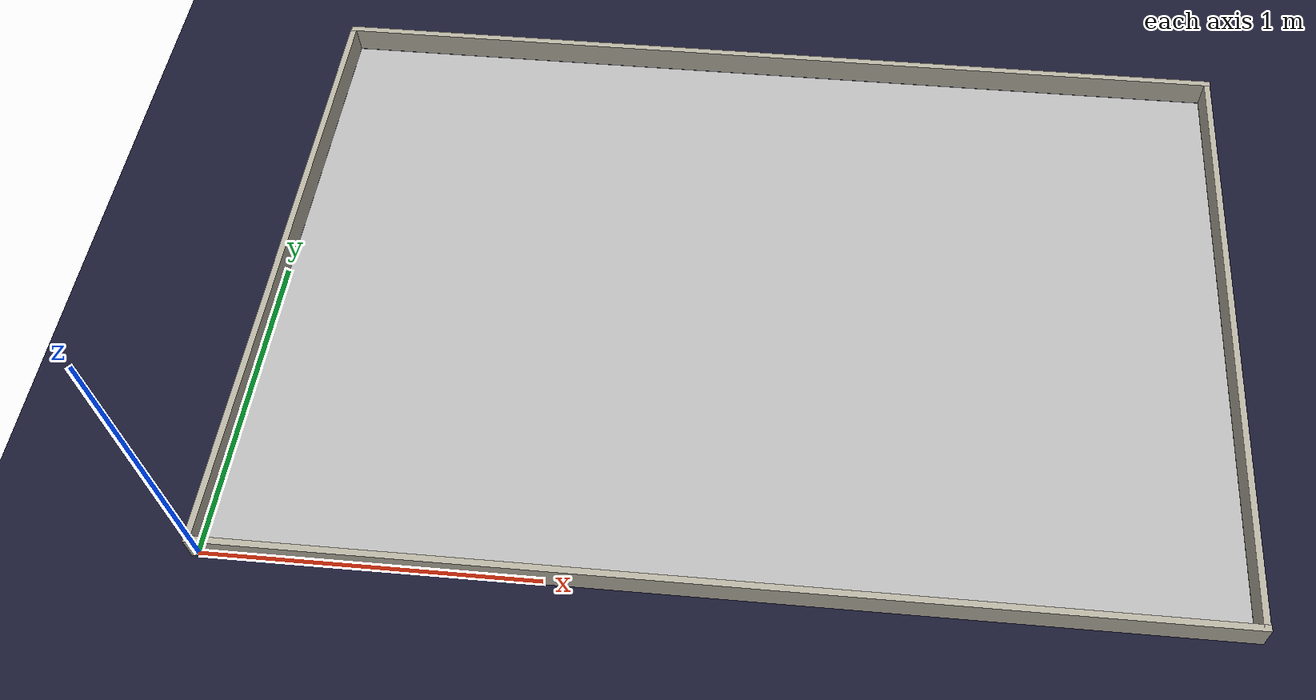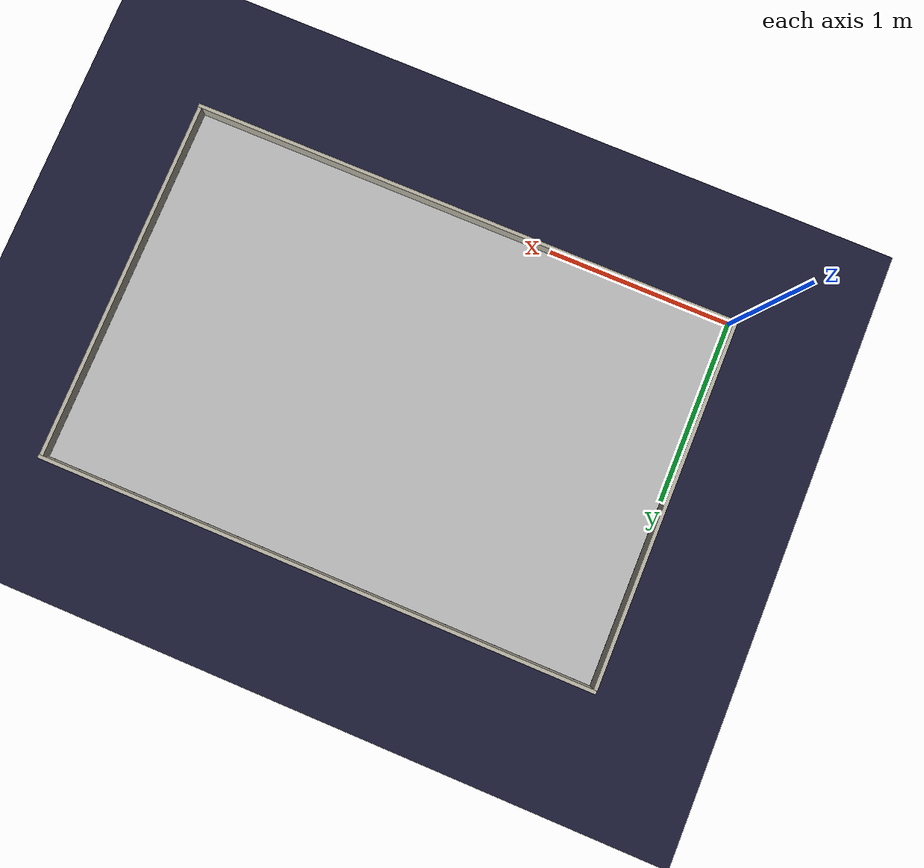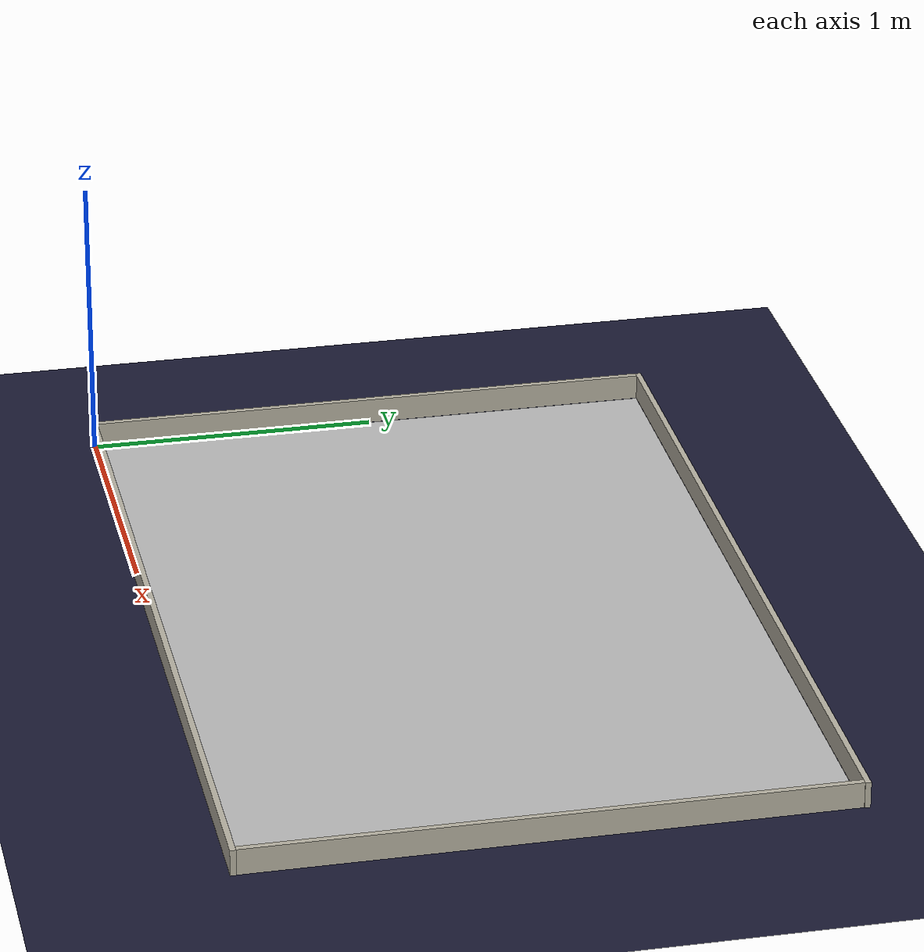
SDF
<?xml version="1.0" ?>
<sdf version="1.4">

  <world name="eurobot_2022">
    <plugin filename="gz-sim-physics-system" name="gz::sim::systems::Physics"></plugin>
    <plugin filename="gz-sim-user-commands-system" name="gz::sim::systems::UserCommands"></plugin>
    <plugin filename="gz-sim-scene-broadcaster-system" name="gz::sim::systems::SceneBroadcaster"></plugin>
    <plugin filename="gz-sim-sensors-system" name="gz::sim::systems::Sensors">
      <render_engine>ogre2</render_engine>
    </plugin>
    <plugin filename="gz-sim-imu-system" name="gz::sim::systems::Imu"></plugin>

    <scene>
      <ambient>0.4 0.4 0.4 1</ambient>
      <shadows>false</shadows>
    </scene>
    <light type="directional" name="light1">
      <pose>1.5 1 50 0 0 0</pose>
      <diffuse>0.5 0.5 0.5 1</diffuse>
      <specular>1 1 1 0</specular>
      <direction>1 0 0.5</direction>
    </light>
    <light type="directional" name="light2">
      <pose>1.5 1 50 0 0 0</pose>
      <diffuse>0.5 0.5 0.5 1</diffuse>
      <specular>1 1 1 0</specular>
      <direction>1 0 -0.5</direction>
    </light>

    <model name="ground_plane">
      <static>true</static>
      <link name="ground_link">
        <collision name="collision1">
          <geometry>
            <plane>
              <normal>0 0 1</normal>
            </plane>
          </geometry>
        </collision>
        <visual name="visual1">
          <geometry>
            <plane>
              <normal>0 0 1</normal>
              <size>100 100</size>
            </plane>
          </geometry>
        <material>
          <ambient>0.1 0.1 0.1 0</ambient>
          <diffuse>0.1 0.1 0.2 0</diffuse>
          <specular>0 0 0 0</specular>
          <emissive>0 0 0 0</emissive>
        </material>
        </visual>
      </link>
    </model>

    <!--Playground-->
    <include>
        <name>playground</name>
        <uri>model://nwt</uri>
        <pose>1.5 1.0 -0.001 0 0 0</pose>
    </include>

    <!--Walls-->
    <model name="wall1">
      <static>true</static>
      <pose>1.502 0 0.045 0 0 0</pose>
      <link name="body">
          <collision name="collision1">
              <geometry>
              <box>
                  <size>3.04 0.02 0.09</size>
              </box>
              </geometry>
          </collision>
          <visual name="visual1">
              <geometry>
              <box>
                  <size>3.04 0.02 0.09</size>
              </box>
              </geometry>
              <material>
              <ambient>0.71 0.69 0.63 1.0</ambient>
              <diffuse>0.71 0.69 0.63 1.0</diffuse>
              <specular>0.1 0.1 0.1 1</specular>
              <emissive>0 0 0 0</emissive>
              </material>
          </visual>
      </link>
    </model>
    <model name="wall2">
      <static>true</static>
      <pose>1.502 2.01 0.045 0 0 0</pose>
      <link name="body">
          <collision name="collision1">
              <geometry>
              <box>
                  <size>3.04 0.02 0.09</size>
              </box>
              </geometry>
          </collision>
          <visual name="visual1">
              <geometry>
              <box>
                  <size>3.04 0.02 0.09</size>
              </box>
              </geometry>
              <material>
              <ambient>0.71 0.69 0.63 1.0</ambient>
              <diffuse>0.71 0.69 0.63 1.0</diffuse>
              <specular>0.1 0.1 0.1 1</specular>
              <emissive>0 0 0 0</emissive>
              </material>
          </visual>
      </link>
    </model>
    <model name="wall3">
        <static>true</static>
        <pose>3.01 1.0 0.045 0 0 0</pose>
        <link name="body">
            <collision name="collision1">
                <geometry>
                <box>
                    <size>0.02 2.0 0.09</size>
                </box>
                </geometry>
            </collision>
            <visual name="visual1">
                <geometry>
                <box>
                    <size>0.02 2 0.09</size>
                </box>
                </geometry>
                <material>
                <ambient>0.71 0.69 0.63 1.0</ambient>
                <diffuse>0.71 0.69 0.63 1.0</diffuse>
                <specular>0.1 0.1 0.1 1</specular>
                <emissive>0 0 0 0</emissive>
                </material>
            </visual>
        </link>
    </model>
        <model name="wall4">
        <static>true</static>
        <pose>-0.01 1.0 0.045 0 0 0</pose>
        <link name="body">
            <collision name="collision1">
                <geometry>
                <box>
                    <size>0.02 2.0 0.09</size>
                </box>
                </geometry>
            </collision>
            <visual name="visual1">
                <geometry>
                <box>
                    <size>0.02 2 0.09</size>
                </box>
                </geometry>
                <material>
                <ambient>0.71 0.69 0.63 1.0</ambient>
                <diffuse>0.71 0.69 0.63 1.0</diffuse>
                <specular>0.1 0.1 0.1 1</specular>
                <emissive>0 0 0 0</emissive>
                </material>
            </visual>
        </link>
    </model>

    <!--Landmarks-->
  </world>
</sdf>

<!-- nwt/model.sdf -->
<sdf version="1.6">
  <model name="NWT Playground Model">
    <static>true</static>
  <link name="plane">
      <collision name="plane_collision">
        <geometry>
          <box>
            <size>3 2 0.0001</size>
          </box>
        </geometry>
      </collision>
      <visual name="plane_visual">
        <geometry>
          <box>
            <size>3 2 0.0001</size>
          </box>
        </geometry>
        <material>
          <script>
              <uri>model://nwt/materials/scripts</uri>
              <uri>model://nwt/materials/textures/</uri>
              <name>NWT/Figures</name>
          </script>
      </material>
      </visual>
    </link>

  </model>
</sdf>
